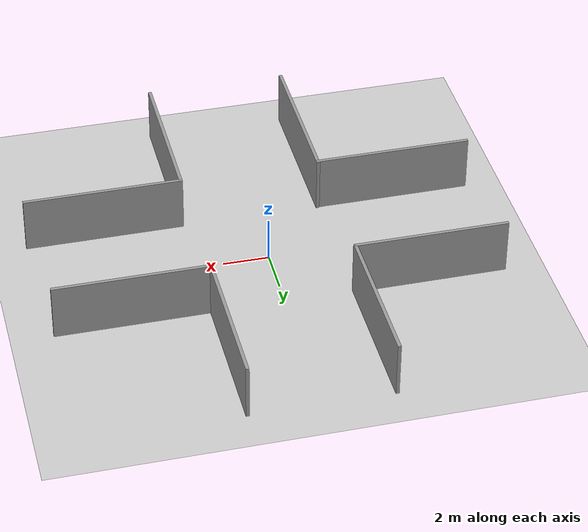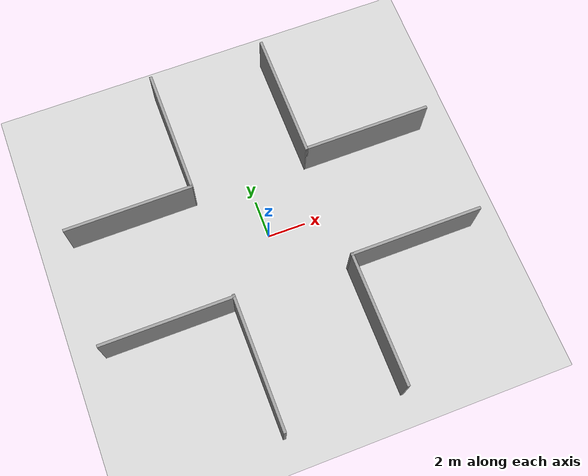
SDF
<sdf version="1.7">
 <world name="default">
  <light name="sun" type="directional">
   <pose>0 0 10 0 -0 0</pose>
   <diffuse>0.8 0.8 0.8 1</diffuse>
   <specular>0.2 0.2 0.2 1</specular>
   <attenuation>
    <range>1000</range>
    <constant>0.9</constant>
    <linear>0.01</linear>
    <quadratic>0.001</quadratic>
   </attenuation>
   <direction>-0.5 0.1 -0.9</direction>
   <spot><inner_angle>0</inner_angle><outer_angle>0</outer_angle><falloff>0</falloff></spot>
  </light>
  <model name="ground_plane">
   <static>1</static>
   <link name="link">
    <collision name="collision">
     <geometry><plane><normal>0 0 1</normal><size>100 100</size></plane></geometry>
     <surface>
      <contact><collide_bitmask>65535</collide_bitmask></contact>
      <friction><ode><mu>100</mu><mu2>50</mu2></ode></friction>
     </surface>
    </collision>
    <visual name="visual">
     <cast_shadows>0</cast_shadows>
     <geometry><plane><normal>0 0 1</normal><size>100 100</size></plane></geometry>
     <material>
      <script><uri>file://media/materials/scripts/gazebo.material</uri><name>Gazebo/Grey</name></script>
     </material>
    </visual>
   </link>
  </model>
  <gravity>0 0 -9.8</gravity>
  <magnetic_field>6e-06 2.3e-05 -4.2e-05</magnetic_field>
  <atmosphere type="adiabatic"/>
  <physics type="ode">
   <max_step_size>0.001</max_step_size>
   <real_time_factor>1</real_time_factor>
   <real_time_update_rate>1000</real_time_update_rate>
  </physics>
  <scene><ambient>0.4 0.4 0.4 1</ambient><background>0.7 0.7 0.7 1</background><shadows>1</shadows></scene>
  <spherical_coordinates>
   <surface_model>EARTH_WGS84</surface_model>
   <latitude_deg>0</latitude_deg>
   <longitude_deg>0</longitude_deg>
   <elevation>0</elevation>
   <heading_deg>0</heading_deg>
  </spherical_coordinates>
  <model name="nga_tu">
   <pose>0.130867 -0.157772 0 0 -0 0</pose>
   <link name="Wall_0">
    <collision name="Wall_0_Collision">
     <geometry><box><size>6.75 0.15 2.5</size></box></geometry>
     <pose>0 0 1.25 0 -0 0</pose>
    </collision>
    <visual name="Wall_0_Visual">
     <pose>0 0 1.25 0 -0 0</pose>
     <geometry><box><size>6.75 0.15 2.5</size></box></geometry>
     <material>
      <script><uri>file://media/materials/scripts/gazebo.material</uri><name>Gazebo/Grey</name></script>
      <ambient>1 1 1 1</ambient>
     </material>
     <meta><layer>0</layer></meta>
    </visual>
    <pose>-6.49805 3.20967 0 0 -0 0</pose>
   </link>
   <link name="Wall_1">
    <collision name="Wall_1_Collision">
     <geometry><box><size>6.75 0.15 2.5</size></box></geometry>
     <pose>0 0 1.25 0 -0 0</pose>
    </collision>
    <visual name="Wall_1_Visual">
     <pose>0 0 1.25 0 -0 0</pose>
     <geometry><box><size>6.75 0.15 2.5</size></box></geometry>
     <material>
      <script><uri>file://media/materials/scripts/gazebo.material</uri><name>Gazebo/Grey</name></script>
      <ambient>1 1 1 1</ambient>
     </material>
     <meta><layer>0</layer></meta>
    </visual>
    <pose>-3.14455 6.50967 0 0 -0 1.5708</pose>
   </link>
   <link name="Wall_10">
    <collision name="Wall_10_Collision">
     <geometry><box><size>7 0.15 2.5</size></box></geometry>
     <pose>0 0 1.25 0 -0 0</pose>
    </collision>
    <visual name="Wall_10_Visual">
     <pose>0 0 1.25 0 -0 0</pose>
     <geometry><box><size>7 0.15 2.5</size></box></geometry>
     <material>
      <script><uri>file://media/materials/scripts/gazebo.material</uri><name>Gazebo/Grey</name></script>
      <ambient>1 1 1 1</ambient>
     </material>
     <meta><layer>0</layer></meta>
    </visual>
    <pose>3.06168 -6.38467 0 0 -0 -1.5708</pose>
   </link>
   <link name="Wall_3">
    <collision name="Wall_3_Collision">
     <geometry><box><size>6.75 0.15 2.5</size></box></geometry>
     <pose>0 0 1.25 0 -0 0</pose>
    </collision>
    <visual name="Wall_3_Visual">
     <pose>0 0 1.25 0 -0 0</pose>
     <geometry><box><size>6.75 0.15 2.5</size></box></geometry>
     <material>
      <script><uri>file://media/materials/scripts/gazebo.material</uri><name>Gazebo/Grey</name></script>
      <ambient>1 1 1 1</ambient>
     </material>
     <meta><layer>0</layer></meta>
    </visual>
    <pose>3.03898 6.43472 0 0 -0 -1.5708</pose>
   </link>
   <link name="Wall_4">
    <collision name="Wall_4_Collision">
     <geometry><box><size>6.75 0.15 2.5</size></box></geometry>
     <pose>0 0 1.25 0 -0 0</pose>
    </collision>
    <visual name="Wall_4_Visual">
     <pose>0 0 1.25 0 -0 0</pose>
     <geometry><box><size>6.75 0.15 2.5</size></box></geometry>
     <material>
      <script><uri>file://media/materials/scripts/gazebo.material</uri><name>Gazebo/Grey</name></script>
      <ambient>1 1 1 1</ambient>
     </material>
     <meta><layer>0</layer></meta>
    </visual>
    <pose>6.39248 3.13472 0 0 -0 0</pose>
   </link>
   <link name="Wall_6">
    <collision name="Wall_6_Collision">
     <geometry><box><size>6.97037 0.15 2.5</size></box></geometry>
     <pose>0 0 1.25 0 -0 0</pose>
    </collision>
    <visual name="Wall_6_Visual">
     <pose>0 0 1.25 0 -0 0</pose>
     <geometry><box><size>6.97037 0.15 2.5</size></box></geometry>
     <material>
      <script><uri>file://media/materials/scripts/gazebo.material</uri><name>Gazebo/Grey</name></script>
      <ambient>1 1 1 1</ambient>
     </material>
     <meta><layer>0</layer></meta>
    </visual>
    <pose>-6.50149 -2.94338 0 0 -0 0</pose>
   </link>
   <link name="Wall_7">
    <collision name="Wall_7_Collision">
     <geometry><box><size>7.03695 0.15 2.5</size></box></geometry>
     <pose>0 0 1.25 0 -0 0</pose>
    </collision>
    <visual name="Wall_7_Visual">
     <pose>0 0 1.25 0 -0 0</pose>
     <geometry><box><size>7.03695 0.15 2.5</size></box></geometry>
     <material>
      <script><uri>file://media/materials/scripts/gazebo.material</uri><name>Gazebo/Grey</name></script>
      <ambient>1 1 1 1</ambient>
     </material>
     <meta><layer>0</layer></meta>
    </visual>
    <pose>-3.0913 -6.33335 0 0 -0 -1.5708</pose>
   </link>
   <link name="Wall_9">
    <collision name="Wall_9_Collision">
     <geometry><box><size>7 0.15 2.5</size></box></geometry>
     <pose>0 0 1.25 0 -0 0</pose>
    </collision>
    <visual name="Wall_9_Visual">
     <pose>0 0 1.25 0 -0 0</pose>
     <geometry><box><size>7 0.15 2.5</size></box></geometry>
     <material>
      <script><uri>file://media/materials/scripts/gazebo.material</uri><name>Gazebo/Grey</name></script>
      <ambient>1 1 1 1</ambient>
     </material>
     <meta><layer>0</layer></meta>
    </visual>
    <pose>6.48667 -2.95967 0 0 -0 3.14159</pose>
   </link>
   <static>1</static>
  </model>
 </world>
</sdf>
